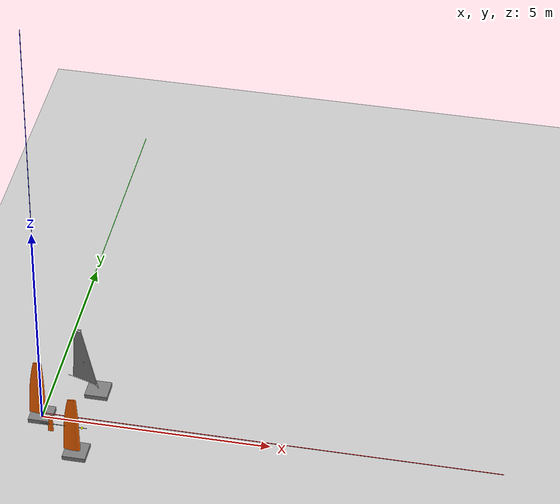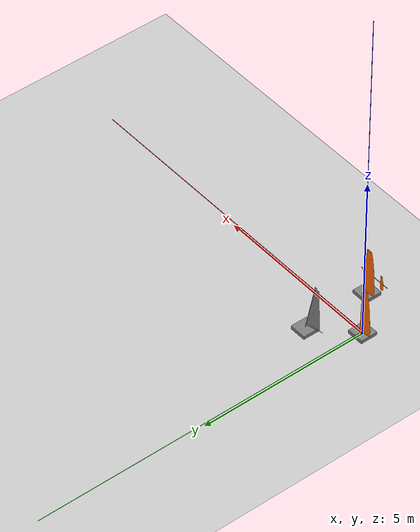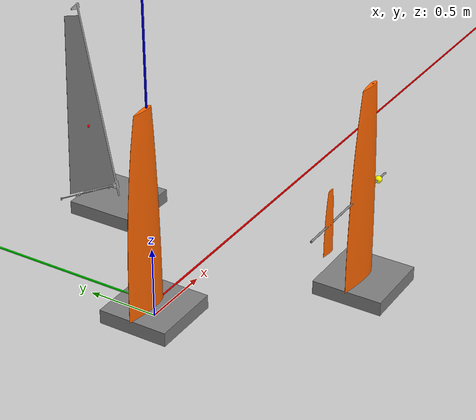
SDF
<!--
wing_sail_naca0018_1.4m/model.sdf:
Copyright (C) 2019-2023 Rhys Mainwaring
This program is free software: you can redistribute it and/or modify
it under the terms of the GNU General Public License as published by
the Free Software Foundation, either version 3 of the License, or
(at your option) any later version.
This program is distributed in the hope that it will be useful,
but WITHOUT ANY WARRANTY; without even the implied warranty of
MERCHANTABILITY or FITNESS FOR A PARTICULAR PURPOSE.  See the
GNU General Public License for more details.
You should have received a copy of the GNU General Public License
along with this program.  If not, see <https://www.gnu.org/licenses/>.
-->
<?xml version="1.0" ?>
<sdf version="1.6">
  <world name="test">
    <physics name="1ms" type="ignored">
      <max_step_size>0.001</max_step_size>
      <real_time_factor>1</real_time_factor>
    </physics>

    <plugin filename="gz-sim-physics-system"
        name="gz::sim::systems::Physics">
    </plugin>
    <plugin filename="gz-sim-forcetorque-system"
        name="gz::sim::systems::ForceTorque">
    </plugin>
    <plugin filename="gz-sim-sensors-system"
        name="gz::sim::systems::Sensors">
      <render_engine>ogre2</render_engine>
      <background_color>0.8 0.8 0.8</background_color>
    </plugin>
    <plugin filename="gz-sim-scene-broadcaster-system"
        name="gz::sim::systems::SceneBroadcaster">
    </plugin>
    <plugin filename="gz-sim-user-commands-system"
        name="gz::sim::systems::UserCommands">
    </plugin>
    <plugin filename="gz-sim-imu-system"
        name="gz::sim::systems::Imu">
    </plugin>
    <plugin filename="asv_sim2-anemometer-system"
      name="gz::sim::systems::Anemometer">
    </plugin>

    <scene>
      <ambient>1.0 1.0 1.0</ambient>
      <background>0.8 0.8 0.8</background>
      <sky></sky>
    </scene>

    <spherical_coordinates>
      <latitude_deg>51.56991349023042</latitude_deg>
      <longitude_deg>-4.033693921107272</longitude_deg>
      <elevation>10.0</elevation>
      <heading_deg>0</heading_deg>
      <surface_model>EARTH_WGS84</surface_model>
    </spherical_coordinates>

    <light type="directional" name="sun">
      <cast_shadows>true</cast_shadows>
      <pose>0 0 10 0 0 0</pose>
      <diffuse>0.8 0.8 0.8 1</diffuse>
      <specular>0.6 0.6 0.6 1</specular>
      <direction>-0.5 0.1 -0.9</direction>
    </light>

    <wind>
      <linear_velocity>-3.5 3.5 0.0</linear_velocity>
    </wind>

    <model name="axes">
      <static>1</static>
      <link name="link">
        <visual name="r">
          <cast_shadows>0</cast_shadows>
          <pose>5 0 0.1 0 0 0</pose>
          <geometry>
            <box>
              <size>10 0.01 0.01</size>
            </box>
          </geometry>
          <material>
            <ambient>1 0 0 1</ambient>
            <diffuse>1 0 0 1</diffuse>
            <emissive>1 0 0 1</emissive>
            <specular>0.5 0.5 0.5 1</specular>
          </material>
        </visual>
        <visual name="g">
          <cast_shadows>0</cast_shadows>
          <pose>0 5 0.1 0 0 0</pose>
          <geometry>
            <box>
              <size>0.01 10 0.01</size>
            </box>
          </geometry>
          <material>
            <ambient>0 1 0 1</ambient>
            <diffuse>0 1 0 1</diffuse>
            <emissive>0 1 0 1</emissive>
            <specular>0.5 0.5 0.5 1</specular>
          </material>
        </visual>
        <visual name="b">
          <cast_shadows>0</cast_shadows>
          <pose>0 0 5.1 0 0 0</pose>
          <geometry>
            <box>
              <size>0.01 0.01 10</size>
            </box>
          </geometry>
          <material>
            <ambient>0 0 1 1</ambient>
            <diffuse>0 0 1 1</diffuse>
            <emissive>0 0 1 1</emissive>
            <specular>0.5 0.5 0.5 1</specular>
          </material>
        </visual>
      </link>
    </model>

    <model name="ground_plane">
      <static>true</static>
      <link name="link">
        <collision name="collision">
          <geometry>
            <plane>
              <normal>0 0 1</normal>
              <size>100 100</size>
            </plane>
          </geometry>
        </collision>
        <visual name="visual">
          <geometry>
            <plane>
              <normal>0 0 1</normal>
              <size>100 100</size>
            </plane>
          </geometry>
          <material>
            <ambient>0.8 0.8 0.8 1</ambient>
            <diffuse>0.8 0.8 0.8 1</diffuse>
            <specular>0.8 0.8 0.8 1</specular>
          </material>
        </visual>
      </link>
    </model>

    <model name="wing_sail_test">
      <pose>0 0 0.05 0 0 0</pose>

      <plugin filename="gz-sim-joint-state-publisher-system"
        name="gz::sim::systems::JointStatePublisher">
      </plugin>

      <plugin filename="gz-sim-joint-position-controller-system"
          name="gz::sim::systems::JointPositionController">
        <joint_name>wing_sail_joint</joint_name>
        <topic>/wing_sail_joint/cmd_pos</topic>
        <p_gain>2</p_gain>
        <i_gain>0.1</i_gain>
        <d_gain>0.05</d_gain>
        <i_max>1</i_max>
        <i_min>-1</i_min>
        <cmd_max>1000</cmd_max>
        <cmd_min>-1000</cmd_min>
      </plugin>

      <link name="base_link">
        <inertial>
          <mass>1000</mass>
          <inertia>
            <ixx>21.66666667</ixx>
            <ixy>0</ixy>
            <iyy>21.66666667</iyy>
            <iyz>0</iyz>
            <izz>41.666667</izz>
          </inertia>
        </inertial>
        <collision name="collision">
          <geometry>
            <box>
              <size>0.5 0.5 0.1</size>
            </box>
          </geometry>
        </collision>
        <visual name="visual">
          <geometry>
            <box>
              <size>0.5 0.5 0.1</size>
            </box>
          </geometry>
          <material>
            <ambient>0.5 0.5 0.5 1.0</ambient>
            <diffuse>0.5 0.5 0.5 1.0</diffuse>
            <specular>0.1 0.1 0.1 1.0</specular>
          </material>
        </visual>
      </link>

      <include>
        <pose>0 0 0.05 0 0 0</pose>
        <uri>model://wing_sail_naca0018_1.4m</uri>
        <name>wing_sail</name>
      </include>

      <joint name="wing_sail_joint" type="revolute" >
        <pose> 0 0 0.05 0 0 0</pose>
        <child>wing_sail::wing_sail_link</child>
        <parent>base_link</parent>
        <axis>
          <xyz>0 0 1</xyz>
          <dynamics>
            <damping>0.01</damping>
          </dynamics>
          <limit>
            <lower>-1.0E+8</lower>
            <upper>1.0E+8</upper>
          </limit>
        </axis>
        <sensor name="force_torque_sensor" type="force_torque">
          <always_on>true</always_on>
          <update_rate>30</update_rate>
          <visualize>true</visualize>
        </sensor>
      </joint>
    </model>

    <model name="wing_sail_with_elevator_test">
      <pose>1 -1 0.05 0 0 0</pose>

      <plugin filename="gz-sim-joint-state-publisher-system"
        name="gz::sim::systems::JointStatePublisher">
      </plugin>

      <plugin filename="gz-sim-joint-position-controller-system"
          name="gz::sim::systems::JointPositionController">
        <joint_name>wing_sail::wing_sail_elevator_joint</joint_name>
        <topic>/wing_sail_elevator_joint/cmd_pos</topic>
        <p_gain>1</p_gain>
        <i_gain>0</i_gain>
        <d_gain>0</d_gain>
        <i_max>1</i_max>
        <i_min>-1</i_min>
        <cmd_max>1000</cmd_max>
        <cmd_min>-1000</cmd_min>
      </plugin>

      <link name="base_link">
        <inertial>
          <mass>1000</mass>
          <inertia>
            <ixx>21.66666667</ixx>
            <ixy>0</ixy>
            <iyy>21.66666667</iyy>
            <iyz>0</iyz>
            <izz>41.666667</izz>
          </inertia>
        </inertial>
        <collision name="collision">
          <geometry>
            <box>
              <size>0.5 0.5 0.1</size>
            </box>
          </geometry>
        </collision>
        <visual name="visual">
          <geometry>
            <box>
              <size>0.5 0.5 0.1</size>
            </box>
          </geometry>
          <material>
            <ambient>0.5 0.5 0.5 1.0</ambient>
            <diffuse>0.5 0.5 0.5 1.0</diffuse>
            <specular>0.1 0.1 0.1 1.0</specular>
          </material>
        </visual>
      </link>

      <include>
          <pose>0 0 0.05 0 0 0</pose>
          <uri>model://wing_sail_naca0018_1.4m_with_elevator</uri>
          <name>wing_sail</name>
      </include>

      <joint name="wing_sail_joint" type="revolute">
        <pose> 0 0 0.05 0 0 0</pose>
        <child>wing_sail::wing_sail_link</child>
        <parent>base_link</parent>
        <axis>
          <xyz>0 0 1</xyz>
          <limit>
            <lower>-1.0E8</lower>
            <upper>1.0E8</upper>
          </limit>
          <dynamics>
            <damping>0.01</damping>
          </dynamics>
        </axis>
        <sensor name="force_torque_sensor" type="force_torque">
          <always_on>true</always_on>
          <update_rate>30</update_rate>
          <visualize>true</visualize>
        </sensor>
      </joint>
    </model>

    <model name="main_sail_test">
      <pose>1 1 0.05 0 0 0</pose>

      <plugin filename="gz-sim-joint-state-publisher-system"
        name="gz::sim::systems::JointStatePublisher">
      </plugin>

      <plugin filename="asv_sim2-sail-position-controller-system"
          name="gz::sim::systems::SailPositionController">
        <joint_name>main_sail_joint</joint_name>
        <topic>/main_sail_joint/cmd_pos</topic>
        <p_gain>100</p_gain>
        <i_gain>0</i_gain>
        <d_gain>30</d_gain>
        <i_max>1</i_max>
        <i_min>-1</i_min>
        <cmd_max>100</cmd_max>
        <cmd_min>-100</cmd_min>
      </plugin>

      <link name="base_link">
        <inertial>
          <mass>1000</mass>
          <inertia>
            <ixx>21.66666667</ixx>
            <ixy>0</ixy>
            <iyy>21.66666667</iyy>
            <iyz>0</iyz>
            <izz>41.666667</izz>
          </inertia>
        </inertial>
        <collision name="collision">
          <geometry>
            <box>
              <size>0.5 0.5 0.1</size>
            </box>
          </geometry>
        </collision>
        <visual name="visual">
          <geometry>
            <box>
              <size>0.5 0.5 0.1</size>
            </box>
          </geometry>
          <material>
            <ambient>0.5 0.5 0.5 1.0</ambient>
            <diffuse>0.5 0.5 0.5 1.0</diffuse>
            <specular>0.1 0.1 0.1 1.0</specular>
          </material>
        </visual>
      </link>

      <include>
        <pose>0 0 0.05 0 -0.20943951 0</pose>
        <uri>model://main_sail_ly01</uri>
        <name>main_sail</name>
      </include>

      <joint type="revolute" name="main_sail_joint">
        <pose relative_to="main_sail::main_sail_link">0 0 0 0 0 0</pose>
        <child>main_sail::main_sail_link</child>
        <parent>base_link</parent>
        <axis>
          <xyz>0 0 1</xyz>
          <dynamics>
            <damping>0.01</damping>
          </dynamics>
          <limit>
            <lower>-1.396263402</lower>
            <upper>1.396263402</upper>
          </limit>
        </axis>
        <sensor name="force_torque_sensor" type="force_torque">
          <always_on>true</always_on>
          <update_rate>30</update_rate>
          <visualize>false</visualize>
        </sensor>
      </joint>
    </model>

  </world>
</sdf>

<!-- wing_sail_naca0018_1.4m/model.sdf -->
<sdf version="1.6">
  <model name="wing_sail_naca0018_1.4m">

    <!-- Plugins -->

    <!--
      Linear approximations to lift / drag coefficient curves for
      NACA 0018 airfoil.
      Foil stalls at approx. 14 degrees (lower in the linear approx.)
    -->
    <plugin name="gz::sim::systems::SailLiftDrag"
        filename="asv_sim2-sail-lift-drag-system">
      <a0>0.0</a0>
      <cla>6.2832</cla>
      <alpha_stall>0.1592</alpha_stall>
      <cla_stall>-0.7083</cla_stall>
      <cda>0.63662</cda>
      <area>0.4858</area>
      <fluid_density>1.2</fluid_density>
      <forward>1 0 0</forward>
      <upward>0 1 0</upward>
      <cp>-0.05 0.0 0.65</cp>
      <link_name>wing_sail_link</link_name>
      <radial_symmetry>true</radial_symmetry>
      <topic>lift_drag</topic>
    </plugin>

    <link name="wing_sail_link">
      <inertial>
        <pose>-0.05 0.0 0.65 0 0 0</pose>
        <mass>2.0</mass>
        <inertia>
          <ixx>0.326733333</ixx>
          <ixy>0</ixy>
          <iyy>0.348266667</iyy>
          <iyz>0</iyz>
          <izz>0.021666667</izz>
        </inertia>
      </inertial>
      <collision name="wing_sail_collision">
        <pose>-0.09 0 0.7 0 0 0</pose>
        <geometry>
          <box>
            <size>0.35 0.07 1.4</size>
          </box>
        </geometry>
      </collision>
      <visual name="wing_sail_visual">
        <geometry>
          <mesh>
            <uri>model://wing_sail_naca0018_1.4m/meshes/wing_sail.stl</uri>
          </mesh>
        </geometry>
        <material>
          <ambient>1.0 0.4 0.0 0.9</ambient>
          <diffuse>1.0 0.4 0.0 0.9</diffuse>
          <specular>0.1 0.1 0.1 1.0</specular>
        </material>
      </visual>
      <visual name="cp_visual">
        <pose>-0.05 0 0.65 0 0 0</pose>
        <geometry>
          <sphere>
            <radius>0.01</radius>
          </sphere>
        </geometry>
        <material>
          <ambient>1.0 0.0 0.0 1.0</ambient>
          <diffuse>1.0 0.0 0.0 1.0</diffuse>
          <specular>0.1 0.1 0.1 1.0</specular>
        </material>
      </visual>
    </link>

  </model>
</sdf>

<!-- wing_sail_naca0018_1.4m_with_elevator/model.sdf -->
<sdf version="1.6">
  <model name="wing_sail_naca0018_1.4m_with_elevator">

    <!-- Plugins -->

    <!--
      Linear approximations to lift / drag coefficient curves for
      NACA 0018 airfoil.
      Foil stalls at approx. 14 degrees (lower in the linear approx.)
    -->
    <plugin name="gz::sim::systems::SailLiftDrag"
        filename="asv_sim2-sail-lift-drag-system">
      <a0>0.0</a0>
      <cla>6.2832</cla>
      <alpha_stall>0.1592</alpha_stall>
      <cla_stall>-0.7083</cla_stall>
      <cda>0.63662</cda>
      <area>0.4858</area>
      <fluid_density>1.2</fluid_density>
      <forward>1 0 0</forward>
      <upward>0 1 0</upward>
      <cp>-0.05 0.0 0.65</cp>
      <link_name>wing_sail_link</link_name>
      <radial_symmetry>true</radial_symmetry>
      <topic>lift_drag</topic>
    </plugin>

    <plugin name="gz::sim::systems::SailLiftDrag"
        filename="asv_sim2-sail-lift-drag-system">
      <a0>0.0</a0>
      <cla>6.2832</cla>
      <alpha_stall>0.1592</alpha_stall>
      <cla_stall>-0.7083</cla_stall>
      <cda>0.63662</cda>
      <area>0.04858</area>
      <fluid_density>1.2</fluid_density>
      <forward>1 0 0</forward>
      <upward>0 1 0</upward>
      <cp>-0.015 0.0 0.2</cp>
      <link_name>wing_sail_elevator_link</link_name>
      <radial_symmetry>true</radial_symmetry>
      <topic>lift_drag</topic>
    </plugin>

    <!-- Wing sail -->
    <link name="wing_sail_link">
      <inertial>
        <pose>-0.05 0.0 0.65 0 0 0</pose>
        <mass>2.0</mass>
        <inertia>
          <ixx>0.326733333</ixx>
          <ixy>0</ixy>
          <iyy>0.348266667</iyy>
          <iyz>0</iyz>
          <izz>0.021666667</izz>
        </inertia>
      </inertial>
      <collision name="wing_sail_collision">
        <pose>-0.09 0 0.7 0 0 0</pose>
        <geometry>
          <box>
            <size>0.35 0.07 1.4</size>
          </box>
        </geometry>
      </collision>
      <visual name="wing_sail_visual">
        <geometry>
          <mesh>
            <uri>model://wing_sail_naca0018_1.4m_with_elevator/meshes/wing_sail.stl</uri>
          </mesh>
        </geometry>
        <material>
          <ambient>1.0 0.4 0.0 0.9</ambient>
          <diffuse>1.0 0.4 0.0 0.9</diffuse>
          <specular>0.1 0.1 0.1 1.0</specular>
        </material>
      </visual>
      <visual name="elevator_spar_visual">
        <pose>-0.25 0 0.65 0 1.570796 0</pose>
        <geometry>
          <cylinder>
            <radius>0.007</radius>
            <length>1.000</length>
          </cylinder>
        </geometry>
        <material>
          <ambient>0.5 0.5 0.5 1.0</ambient>
          <diffuse>0.5 0.5 0.5 1.0</diffuse>
          <specular>0.1 0.1 0.1 1.0</specular>
        </material>
      </visual>
      <visual name="cp_visual">
        <pose>-0.05 0 0.65 0 0 0</pose>
        <geometry>
          <sphere>
            <radius>0.01</radius>
          </sphere>
        </geometry>
        <material>
          <ambient>1.0 0.0 0.0 1.0</ambient>
          <diffuse>1.0 0.0 0.0 1.0</diffuse>
          <specular>0.1 0.1 0.1 1.0</specular>
        </material>
      </visual>
    </link>

    <!-- Wing sail elevator -->
    <link name="wing_sail_elevator_link">
      <pose>-0.5 0 0.45 0 0 0</pose>
      <inertial>
        <pose>-0.015 0.0 0.2 1.570796 1.570796 0</pose>
        <mass>0.0632455</mass>
        <inertia>
          <ixx>6.75281E-05</ixx>
          <ixy>0</ixy>
          <iyy>0.001029888</iyy>
          <iyz>0</iyz>
          <izz>0.001096957</izz>
        </inertia>
      </inertial>
      <collision name="collision">
        <pose>-0.028 0 0.22 0 0 0</pose>
        <geometry>
          <box>
            <size>0.11 0.02 0.44</size>
          </box>
        </geometry>
      </collision>
      <visual name="wing_sail_elevator_visual">
        <geometry>
          <mesh>
            <uri>model://wing_sail_naca0018_1.4m_with_elevator/meshes/wing_sail_elevator.stl</uri>
          </mesh>
        </geometry>
        <material>
          <ambient>1.0 0.4 0.0 0.9</ambient>
          <diffuse>1.0 0.4 0.0 0.9</diffuse>
          <specular>0.1 0.1 0.1 0.9</specular>
        </material>
      </visual>
      <visual name="cp_visual">
        <pose>-0.015 0 0.2 0 0 0</pose>
        <geometry>
          <sphere>
            <radius>0.01</radius>
          </sphere>
        </geometry>
        <material>
          <ambient>1.0 0.0 0.0 1.0</ambient>
          <diffuse>1.0 0.0 0.0 1.0</diffuse>
          <specular>0.1 0.1 0.1 1.0</specular>
        </material>
      </visual>
    </link>

    <joint name="wing_sail_elevator_joint" type="revolute">
      <pose>0 0 0.2 0 0 0</pose>
      <child>wing_sail_elevator_link</child>
      <parent>wing_sail_link</parent>
      <axis>
        <xyz>0 0 1</xyz>
        <dynamics>
          <damping>0.01</damping>
        </dynamics>
        <limit>
          <lower>-1.570796327</lower>
          <upper>1.570796327</upper>
        </limit>
      </axis>
      <sensor name="force_torque_sensor" type="force_torque">
        <always_on>true</always_on>
        <update_rate>30</update_rate>
        <visualize>true</visualize>
      </sensor>
    </joint>

    <!-- Wing sail counterweight -->
    <link name="wing_sail_counterweight_link">
      <pose>0.15 0 0.65 0 0 0</pose>
      <inertial>
        <mass>0.1</mass>
        <inertia>
          <ixx>0.000025</ixx>
          <ixy>0</ixy>
          <iyy>0.000025</iyy>
          <iyz>0</iyz>
          <izz>0.000025</izz>
        </inertia>
      </inertial>
      <collision name="collision">
        <geometry>
          <sphere>
            <radius>0.025</radius>
          </sphere>
        </geometry>
      </collision>
      <visual name="visual">
        <geometry>
          <sphere>
            <radius>0.025</radius>
          </sphere>
        </geometry>
        <material>
          <ambient>1.0 1.0 0.0 1.0</ambient>
          <diffuse>1.0 1.0 0.0 1.0</diffuse>
          <specular>0.1 0.1 0.1 1.0</specular>
        </material>
      </visual>
    </link>

    <joint name="wing_sail_counterweight_joint" type="revolute">
      <child>wing_sail_counterweight_link</child>
      <parent>wing_sail_link</parent>
      <axis>
        <xyz>0 0 1</xyz>
        <dynamics>
          <damping>1.0</damping>
        </dynamics>
        <limit>
          <lower>0</lower>
          <upper>0</upper>
        </limit>
      </axis>
    </joint>

  </model>
</sdf>

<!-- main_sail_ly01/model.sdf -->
<sdf version="1.6">
  <model name="main_sail_ly01">

    <!-- Plugins -->
    <plugin name="gz::sim::systems::SailLiftDrag"
        filename="asv_sim2-sail-lift-drag-system">
      <a0>0.0</a0>
      <cla>6.2832</cla>
      <alpha_stall>0.1592</alpha_stall>
      <cla_stall>-0.7083</cla_stall>
      <cda>0.63662</cda>
      <area>0.4858</area>
      <fluid_density>1.2</fluid_density>
      <forward>1 0 0</forward>
      <upward>0 1 0</upward>
      <cp>-0.15 0.0 0.75</cp>
      <link_name>main_sail_link</link_name>
      <radial_symmetry>true</radial_symmetry>
      <topic>lift_drag</topic>
    </plugin>

    <!-- Main sail-->
    <link name="main_sail_link">
      <inertial>
        <pose>-0.15 0.0 0.75 0 0 0</pose>
        <mass>0.5</mass>
        <inertia>
          <ixx>0.081670833</ixx>
          <ixy>0</ixy>
          <iyy>0.088333333</iyy>
          <iyz>0</iyz>
          <izz>0.006670833</izz>
        </inertia>
      </inertial>
      <collision name="sail_collision">
        <pose>-0.2 0 0.9 0 0 0</pose>
        <geometry>
          <box>
            <size>0.4 0.01 1.4</size>
          </box>
        </geometry>
      </collision>
      <visual name="rig_visual">
        <geometry>
          <mesh>
            <uri>model://main_sail_ly01/meshes/land_yacht_rig.dae</uri>
          </mesh>
        </geometry>
      </visual>
      <visual name="sail_visual">
        <pose>-0.01 0 0.12 0 0.20943951 0</pose>
        <geometry>
          <mesh>
            <uri>model://main_sail_ly01/meshes/land_yacht_flat_sail.stl</uri>
          </mesh>
        </geometry>
        <material>
          <ambient>0.5 0.5 0.5 0.9</ambient>
          <diffuse>0.5 0.5 0.5 0.9</diffuse>
          <specular>0.1 0.1 0.1 0.9</specular>
        </material>
      </visual>
      <visual name="cp_visual">
        <pose>-0.15 0.0 0.75 0 0 0</pose>
        <geometry>
          <sphere>
            <radius>0.01</radius>
          </sphere>
        </geometry>
        <material>
          <ambient>1.0 0.0 0.0 1.0</ambient>
          <diffuse>1.0 0.0 0.0 1.0</diffuse>
          <specular>0.1 0.1 0.1 1.0</specular>
        </material>
      </visual>
    </link>

  </model>
</sdf>
